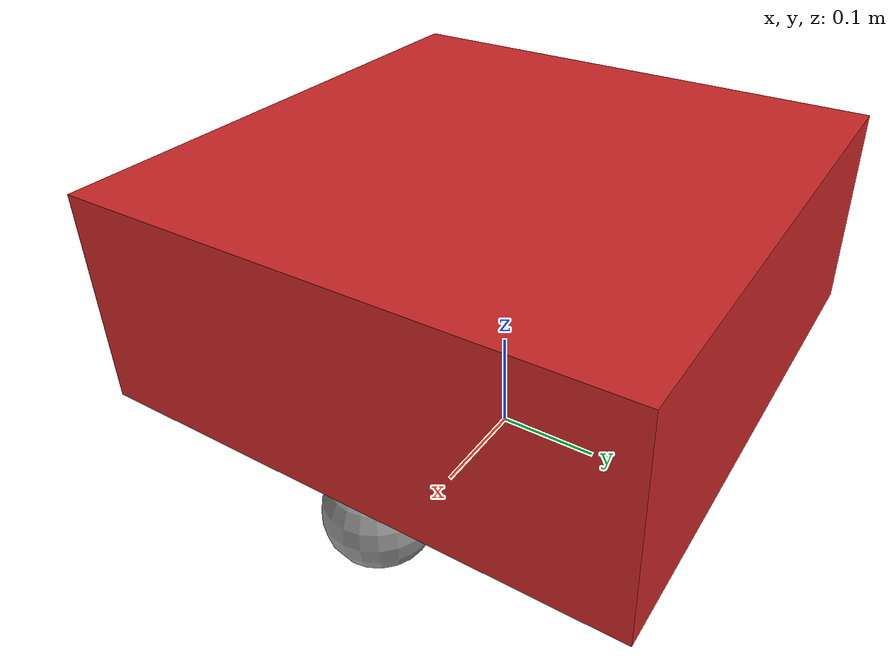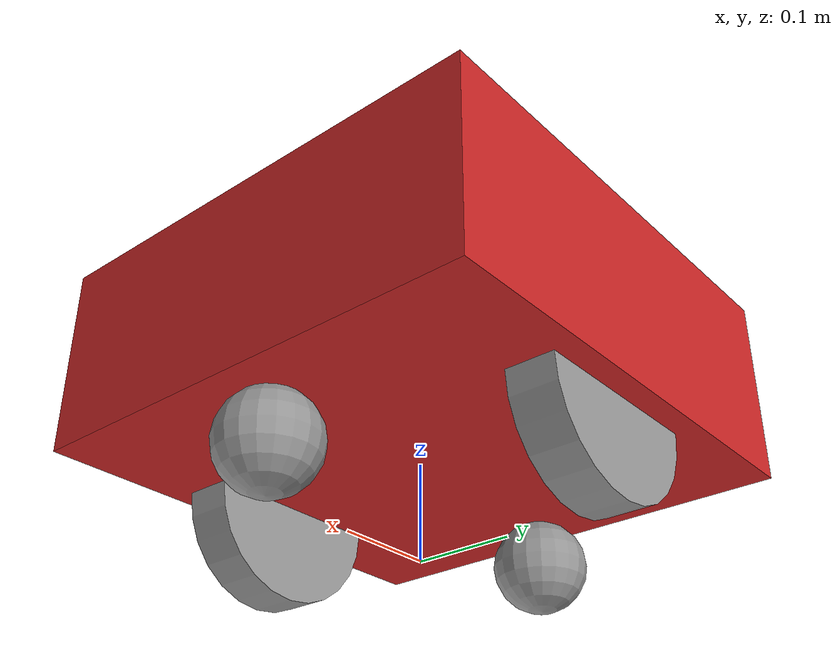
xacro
<?xml version="1.0"?>
<robot name="robot" xmlns:xacro="http://www.ros.org/wiki/xacro">

    <xacro:include filename="common_properties.xacro" />
    <xacro:include filename="robot_base.urdf.xacro" />
    <xacro:include filename="robot_gazebo.urdf.xacro" />
    <xacro:include filename="lidar.urdf.xacro" />

</robot>

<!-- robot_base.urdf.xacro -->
<robot xmlns:xacro="http://www.ros.org/wiki/xacro">

    <link name="base_footprint"/>

    <link name="base_link">
        <visual>
            <geometry>
                <box size="0.5 0.5 0.2 "  />
            </geometry>
            <origin xyz="0 0 0.1" rpy="0 0 0" />
            <material name="" />
        </visual>
        <collision>
            <origin xyz="0 0 0.1" rpy="0 0 0" />
            <geometry>
                <box size="0.5 0.5 0.2 "/>
            </geometry>
    </collision>
   <inertial>
            <origin xyz="0 0 0.1" rpy="0 0 0" />
            <mass value="5" />
            <inertia ixx="${(5/12) * (0.2*0.2 +0.5*0.5)}" ixy="0" ixz="0"
                     iyy="${(5/12) * (0.5*0.5 + 0.5*0.5)}" iyz="0"
                     izz="${(5/12) * (0.5*0.5 + 0.2*0.2)}" />
        </inertial>
    </link>

    <joint name="base_footprint_joint" type="fixed">
        <parent link="base_footprint" />
        <child link="base_link" />
        <origin xyz="0 0 0.1" rpy="0 0 0"/>
    </joint>

     <link name="base_scan">
        <visual>
            <geometry>
                <cylinder radius="0.21" length="0.02" />
            </geometry>
            <origin xyz="0 0 0" rpy="0 0 0" />
            <material name="" />
        </visual>
        <collision>
            <origin xyz="0 0 0.1" rpy="0 0 0" />
            <geometry>
                <cylinder radius="0.21" length="0.2" />
            </geometry>
    </collision>
    <inertial>
         <mass value="5"/>
         <inertia ixx="0.1292" ixy="0.0" ixz="0.0" iyy="0.1292" iyz="0.0" izz="0.225"/>
    </inertial>
     </link>

    <joint name="base_scan_joint" type="fixed">
        <parent link="base_link" />
        <child link="base_scan" />
        <origin xyz="0 0 0.15" rpy="0 0 0"/>
    </joint>

    <link name="right_wheel_link">
        <visual>
            <geometry>
                <cylinder radius="0.1" length="0.05" />
            </geometry>
            <origin xyz="0 0 0" rpy="1.57 0 0" />
            <material name="" />
        </visual>
        <collision>
            <geometry>
            <cylinder radius="0.1" length="0.05" />
            </geometry>
            <origin xyz="0 0 0" rpy="1.57 0 0" />
    </collision>
    <inertial>
         <mass value="1"/>
         <inertia ixx="0.0027" ixy="0.0" ixz="0.0" iyy="0.0027" iyz="0.0" izz="0.005"/>
    </inertial>
    </link>

    <joint name="right_wheel_joint" type="continuous">
        <parent link="base_link" />
        <child link="right_wheel_link" />
        <origin xyz="0 -0.2 0" rpy="0 0 0" />
        <axis xyz="0 1 0" />
    </joint>

    <link name="left_wheel_link">
        <visual>
            <geometry>
                <cylinder radius="0.1" length="0.05" />
            </geometry>
            <origin xyz="0 0 0" rpy="1.57 0 0" />
            <material name="" />
        </visual>
         <collision>
         <geometry>
             <cylinder radius="0.1" length="0.05" />
            </geometry>
            <origin xyz="0 0 0" rpy="1.57 0 0" />
    </collision>
    <inertial>
         <mass value="1"/>
         <inertia ixx="0.0027" ixy="0.0" ixz="0.0" iyy="0.0027" iyz="0.0" izz="0.005"/>
    </inertial>
    </link>

    <joint name="left_wheel_joint" type="continuous">
        <parent link="base_link" />
        <child link="left_wheel_link" />
        <origin xyz="0 0.2 0" rpy="0 0 0" />
        <axis xyz="0 1 0" />
    </joint>

    <link name="caster_wheel_1">
        <visual>
            <geometry>
                <sphere radius="0.05" />
            </geometry>
            <origin xyz="0 0 0" rpy="0 0 0" />
            <material name="" />
        </visual>
        <collision>
      <geometry>
                <sphere radius="0.05" />
            </geometry>
            <origin xyz="0 0 0" rpy="0 0 0" />
    </collision>
    <inertial>
         <mass value="0.5"/>
         <inertia ixx="0.0005" ixy="0.0" ixz="0.0" iyy="0.0005" iyz="0.0" izz="0.0005"/>
    </inertial>
    </link>

 <link name="caster_wheel_2">
        <visual>
            <geometry>
                <sphere radius="0.05" />
            </geometry>
            <origin xyz="0 0 0" rpy="0 0 0" />
            <material name="" />
        </visual>
        <collision>
      <geometry>
                <sphere radius="0.05" />
            </geometry>
            <origin xyz="0 0 0" rpy="0 0 0" />
    </collision>
    <inertial>
         <mass value="0.5"/>
         <inertia ixx="0.0005" ixy="0.0" ixz="0.0" iyy="0.0005" iyz="0.0" izz="0.0005"/>
    </inertial>
    </link>

    <joint name="caster_wheel_joint_1" type="fixed">
        <parent link="base_link" />
        <child link="caster_wheel_1" />
        <origin xyz="0.2 0 -0.05" rpy="0 0 0" />
    </joint>

    <joint name="caster_wheel_joint_2" type="fixed">
        <parent link="base_link" />
        <child link="caster_wheel_2" />
        <origin xyz="-0.2 0 -0.05" rpy="0 0 0" />
    </joint>
</robot>
